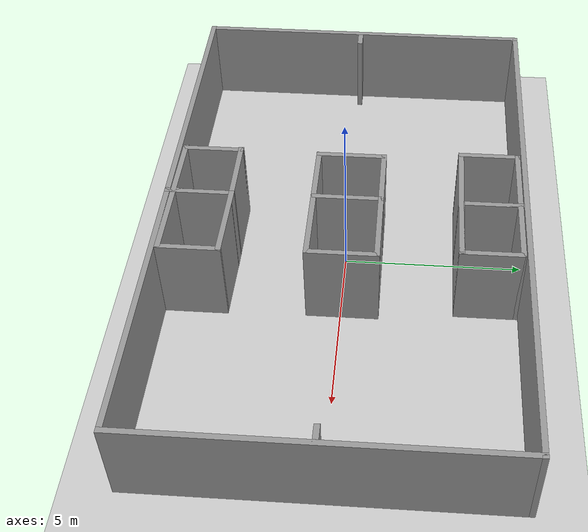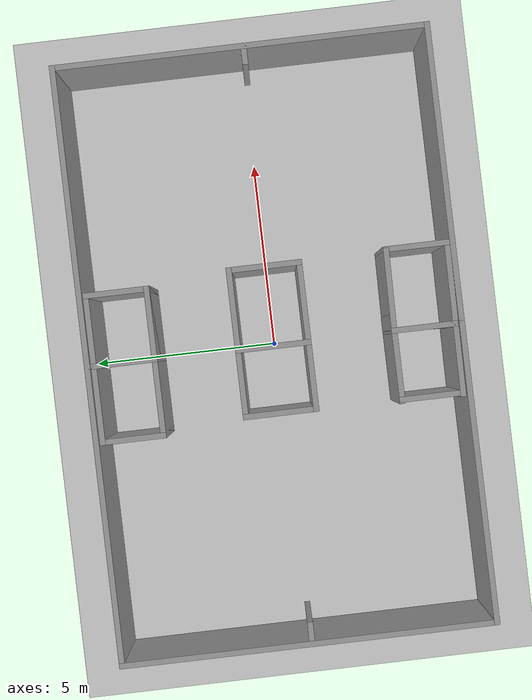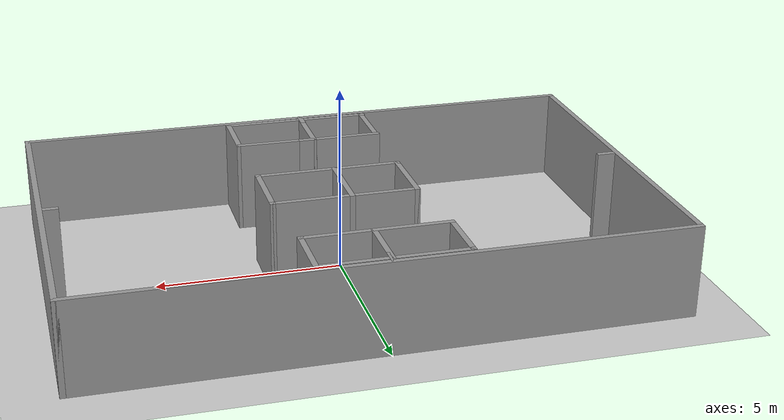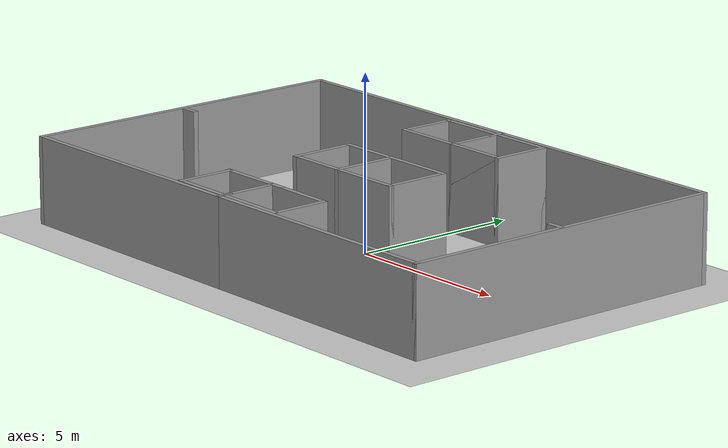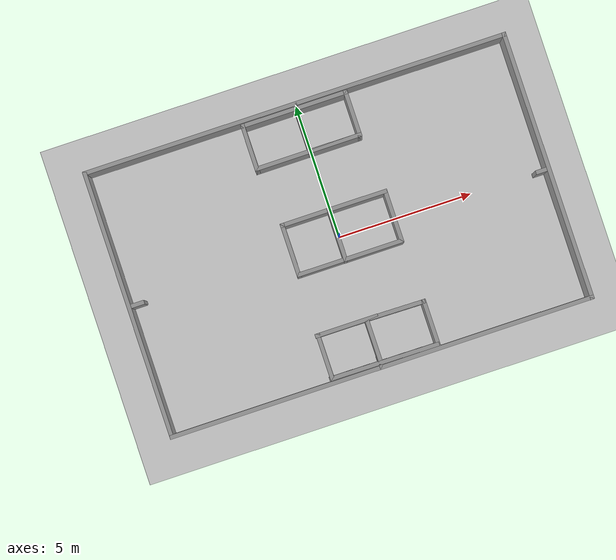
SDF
<sdf version="1.6">
 <world name="default">
  <light name="sun" type="directional">
   <pose>0 0 10 0 -0 0</pose>
   <diffuse>0.8 0.8 0.8 1</diffuse>
   <specular>0.2 0.2 0.2 1</specular>
   <attenuation>
    <range>1000</range>
    <constant>0.9</constant>
    <linear>0.01</linear>
    <quadratic>0.001</quadratic>
   </attenuation>
   <direction>-0.5 0.1 -0.9</direction>
  </light>
  <model name="ground_plane">
   <static>1</static>
   <link name="link">
    <collision name="collision">
     <geometry><plane><normal>0 0 1</normal><size>100 100</size></plane></geometry>
     <surface><friction><ode><mu>100</mu><mu2>50</mu2></ode></friction></surface>
    </collision>
    <visual name="visual">
     <cast_shadows>0</cast_shadows>
     <geometry><plane><normal>0 0 1</normal><size>100 100</size></plane></geometry>
     <material>
      <script><uri>file://media/materials/scripts/gazebo.material</uri><name>Gazebo/Grey</name></script>
     </material>
    </visual>
   </link>
  </model>
  <gravity>0 0 -9.8</gravity>
  <magnetic_field>6e-06 2.3e-05 -4.2e-05</magnetic_field>
  <atmosphere type="adiabatic"/>
  <physics name="default_physics" default="0" type="ode">
   <max_step_size>0.001</max_step_size>
   <real_time_factor>1</real_time_factor>
   <real_time_update_rate>1000</real_time_update_rate>
  </physics>
  <scene><ambient>0.4 0.4 0.4 1</ambient><background>0.7 0.7 0.7 1</background><shadows>1</shadows></scene>
  <spherical_coordinates>
   <surface_model>EARTH_WGS84</surface_model>
   <latitude_deg>0</latitude_deg>
   <longitude_deg>0</longitude_deg>
   <elevation>0</elevation>
   <heading_deg>0</heading_deg>
  </spherical_coordinates>
  <model name="playground_with_corridor">
   <pose>0.027746 -0.001728 0 0 -0 0</pose>
   <link name="Wall_12">
    <collision name="Wall_12_Collision">
     <geometry><box><size>2 0.15 2.5</size></box></geometry>
     <pose>0 0 1.25 0 -0 0</pose>
    </collision>
    <visual name="Wall_12_Visual">
     <pose>0 0 1.25 0 -0 0</pose>
     <geometry><box><size>2 0.15 2.5</size></box></geometry>
     <material>
      <script><uri>file://media/materials/scripts/gazebo.material</uri><name>Gazebo/Grey</name></script>
      <ambient>1 1 1 1</ambient>
     </material>
     <meta><layer>0</layer></meta>
    </visual>
    <pose>-0.095815 0.049104 0 0 -0 1.5708</pose>
   </link>
   <link name="Wall_17">
    <collision name="Wall_17_Collision">
     <geometry><box><size>1.75 0.15 2.5</size></box></geometry>
     <pose>0 0 1.25 0 -0 0</pose>
    </collision>
    <visual name="Wall_17_Visual">
     <pose>0 0 1.25 0 -0 0</pose>
     <geometry><box><size>1.75 0.15 2.5</size></box></geometry>
     <material>
      <script><uri>file://media/materials/scripts/gazebo.material</uri><name>Gazebo/Grey</name></script>
      <ambient>1 1 1 1</ambient>
     </material>
     <meta><layer>0</layer></meta>
    </visual>
    <pose>-0.05869 -3.93371 0 0 0 -1.5708</pose>
   </link>
   <link name="Wall_19">
    <collision name="Wall_19_Collision">
     <geometry><box><size>1.75 0.15 2.5</size></box></geometry>
     <pose>0 0 1.25 0 -0 0</pose>
    </collision>
    <visual name="Wall_19_Visual">
     <pose>0 0 1.25 0 -0 0</pose>
     <geometry><box><size>1.75 0.15 2.5</size></box></geometry>
     <material>
      <script><uri>file://media/materials/scripts/gazebo.material</uri><name>Gazebo/Grey</name></script>
      <ambient>1 1 1 1</ambient>
     </material>
     <meta><layer>0</layer></meta>
    </visual>
    <pose>-0.072353 3.96534 0 0 -0 1.5708</pose>
   </link>
   <link name="Wall_21">
    <collision name="Wall_21_Collision">
     <geometry><box><size>2.25 0.15 2.5</size></box></geometry>
     <pose>0 0 1.25 0 -0 0</pose>
    </collision>
    <visual name="Wall_21_Visual">
     <pose>0 0 1.25 0 -0 0</pose>
     <geometry><box><size>2.25 0.15 2.5</size></box></geometry>
     <material>
      <script><uri>file://media/materials/scripts/gazebo.material</uri><name>Gazebo/Grey</name></script>
      <ambient>1 1 1 1</ambient>
     </material>
     <meta><layer>0</layer></meta>
    </visual>
    <pose>0.954185 0.974104 0 0 -0 0</pose>
   </link>
   <link name="Wall_22">
    <collision name="Wall_22_Collision">
     <geometry><box><size>2 0.15 2.5</size></box></geometry>
     <pose>0 0 1.25 0 -0 0</pose>
    </collision>
    <visual name="Wall_22_Visual">
     <pose>0 0 1.25 0 -0 0</pose>
     <geometry><box><size>2 0.15 2.5</size></box></geometry>
     <material>
      <script><uri>file://media/materials/scripts/gazebo.material</uri><name>Gazebo/Grey</name></script>
      <ambient>1 1 1 1</ambient>
     </material>
     <meta><layer>0</layer></meta>
    </visual>
    <pose>2.00419 0.049104 0 0 0 -1.5708</pose>
   </link>
   <link name="Wall_23">
    <collision name="Wall_23_Collision">
     <geometry><box><size>4 0.15 2.5</size></box></geometry>
     <pose>0 0 1.25 0 -0 0</pose>
    </collision>
    <visual name="Wall_23_Visual">
     <pose>0 0 1.25 0 -0 0</pose>
     <geometry><box><size>4 0.15 2.5</size></box></geometry>
     <material>
      <script><uri>file://media/materials/scripts/gazebo.material</uri><name>Gazebo/Grey</name></script>
      <ambient>1 1 1 1</ambient>
     </material>
     <meta><layer>0</layer></meta>
    </visual>
    <pose>0.079185 -0.875896 0 0 -0 3.14159</pose>
   </link>
   <link name="Wall_24">
    <collision name="Wall_24_Collision">
     <geometry><box><size>2 0.15 2.5</size></box></geometry>
     <pose>0 0 1.25 0 -0 0</pose>
    </collision>
    <visual name="Wall_24_Visual">
     <pose>0 0 1.25 0 -0 0</pose>
     <geometry><box><size>2 0.15 2.5</size></box></geometry>
     <material>
      <script><uri>file://media/materials/scripts/gazebo.material</uri><name>Gazebo/Grey</name></script>
      <ambient>1 1 1 1</ambient>
     </material>
     <meta><layer>0</layer></meta>
    </visual>
    <pose>-1.84581 0.049104 0 0 -0 1.5708</pose>
   </link>
   <link name="Wall_25">
    <collision name="Wall_25_Collision">
     <geometry><box><size>1.9 0.15 2.5</size></box></geometry>
     <pose>0 0 1.25 0 -0 0</pose>
    </collision>
    <visual name="Wall_25_Visual">
     <pose>0 0 1.25 0 -0 0</pose>
     <geometry><box><size>1.9 0.15 2.5</size></box></geometry>
     <material>
      <script><uri>file://media/materials/scripts/gazebo.material</uri><name>Gazebo/Grey</name></script>
      <ambient>1 1 1 1</ambient>
     </material>
     <meta><layer>0</layer></meta>
    </visual>
    <pose>-0.970815 0.974104 0 0 -0 0</pose>
   </link>
   <link name="Wall_27">
    <collision name="Wall_27_Collision">
     <geometry><box><size>2.25023 0.15 2.5</size></box></geometry>
     <pose>0 0 1.25 0 -0 0</pose>
    </collision>
    <visual name="Wall_27_Visual">
     <pose>0 0 1.25 0 -0 0</pose>
     <geometry><box><size>2.25023 0.15 2.5</size></box></geometry>
     <material>
      <script><uri>file://media/materials/scripts/gazebo.material</uri><name>Gazebo/Grey</name></script>
      <ambient>1 1 1 1</ambient>
     </material>
     <meta><layer>0</layer></meta>
    </visual>
    <pose>0.99131 -3.14923 0 0 0 -0.014781</pose>
   </link>
   <link name="Wall_28">
    <collision name="Wall_28_Collision">
     <geometry><box><size>1.75 0.15 2.5</size></box></geometry>
     <pose>0 0 1.25 0 -0 0</pose>
    </collision>
    <visual name="Wall_28_Visual">
     <pose>0 0 1.25 0 -0 0</pose>
     <geometry><box><size>1.75 0.15 2.5</size></box></geometry>
     <material>
      <script><uri>file://media/materials/scripts/gazebo.material</uri><name>Gazebo/Grey</name></script>
      <ambient>1 1 1 1</ambient>
     </material>
     <meta><layer>0</layer></meta>
    </visual>
    <pose>2.07235 -3.96475 0 0 0 -1.5708</pose>
   </link>
   <link name="Wall_29">
    <collision name="Wall_29_Collision">
     <geometry><box><size>4.0949 0.15 2.5</size></box></geometry>
     <pose>0 0 1.25 0 -0 0</pose>
    </collision>
    <visual name="Wall_29_Visual">
     <pose>0 0 1.25 0 -0 0</pose>
     <geometry><box><size>4.0949 0.15 2.5</size></box></geometry>
     <material>
      <script><uri>file://media/materials/scripts/gazebo.material</uri><name>Gazebo/Grey</name></script>
      <ambient>1 1 1 1</ambient>
     </material>
     <meta><layer>0</layer></meta>
    </visual>
    <pose>0.068919 -4.74923 0 0 -0 3.13372</pose>
   </link>
   <link name="Wall_30">
    <collision name="Wall_30_Collision">
     <geometry><box><size>1.75 0.15 2.5</size></box></geometry>
     <pose>0 0 1.25 0 -0 0</pose>
    </collision>
    <visual name="Wall_30_Visual">
     <pose>0 0 1.25 0 -0 0</pose>
     <geometry><box><size>1.75 0.15 2.5</size></box></geometry>
     <material>
      <script><uri>file://media/materials/scripts/gazebo.material</uri><name>Gazebo/Grey</name></script>
      <ambient>1 1 1 1</ambient>
     </material>
     <meta><layer>0</layer></meta>
    </visual>
    <pose>-1.87243 -3.93371 0 0 -0 1.5708</pose>
   </link>
   <link name="Wall_31">
    <collision name="Wall_31_Collision">
     <geometry><box><size>2.34478 0.15 2.5</size></box></geometry>
     <pose>0 0 1.25 0 -0 0</pose>
    </collision>
    <visual name="Wall_31_Visual">
     <pose>0 0 1.25 0 -0 0</pose>
     <geometry><box><size>2.34478 0.15 2.5</size></box></geometry>
     <material>
      <script><uri>file://media/materials/scripts/gazebo.material</uri><name>Gazebo/Grey</name></script>
      <ambient>1 1 1 1</ambient>
     </material>
     <meta><layer>0</layer></meta>
    </visual>
    <pose>-0.806081 -3.13371 0 0 -0 0</pose>
   </link>
   <link name="Wall_33">
    <collision name="Wall_33_Collision">
     <geometry><box><size>2 0.15 2.5</size></box></geometry>
     <pose>0 0 1.25 0 -0 0</pose>
    </collision>
    <visual name="Wall_33_Visual">
     <pose>0 0 1.25 0 -0 0</pose>
     <geometry><box><size>2 0.15 2.5</size></box></geometry>
     <material>
      <script><uri>file://media/materials/scripts/gazebo.material</uri><name>Gazebo/Grey</name></script>
      <ambient>1 1 1 1</ambient>
     </material>
     <meta><layer>0</layer></meta>
    </visual>
    <pose>0.852647 3.16534 0 0 -0 0</pose>
   </link>
   <link name="Wall_34">
    <collision name="Wall_34_Collision">
     <geometry><box><size>1.75 0.15 2.5</size></box></geometry>
     <pose>0 0 1.25 0 -0 0</pose>
    </collision>
    <visual name="Wall_34_Visual">
     <pose>0 0 1.25 0 -0 0</pose>
     <geometry><box><size>1.75 0.15 2.5</size></box></geometry>
     <material>
      <script><uri>file://media/materials/scripts/gazebo.material</uri><name>Gazebo/Grey</name></script>
      <ambient>1 1 1 1</ambient>
     </material>
     <meta><layer>0</layer></meta>
    </visual>
    <pose>1.77765 3.96534 0 0 -0 1.5708</pose>
   </link>
   <link name="Wall_35">
    <collision name="Wall_35_Collision">
     <geometry><box><size>4 0.15 2.5</size></box></geometry>
     <pose>0 0 1.25 0 -0 0</pose>
    </collision>
    <visual name="Wall_35_Visual">
     <pose>0 0 1.25 0 -0 0</pose>
     <geometry><box><size>4 0.15 2.5</size></box></geometry>
     <material>
      <script><uri>file://media/materials/scripts/gazebo.material</uri><name>Gazebo/Grey</name></script>
      <ambient>1 1 1 1</ambient>
     </material>
     <meta><layer>0</layer></meta>
    </visual>
    <pose>-0.147353 4.76534 0 0 -0 3.14159</pose>
   </link>
   <link name="Wall_36">
    <collision name="Wall_36_Collision">
     <geometry><box><size>1.75 0.15 2.5</size></box></geometry>
     <pose>0 0 1.25 0 -0 0</pose>
    </collision>
    <visual name="Wall_36_Visual">
     <pose>0 0 1.25 0 -0 0</pose>
     <geometry><box><size>1.75 0.15 2.5</size></box></geometry>
     <material>
      <script><uri>file://media/materials/scripts/gazebo.material</uri><name>Gazebo/Grey</name></script>
      <ambient>1 1 1 1</ambient>
     </material>
     <meta><layer>0</layer></meta>
    </visual>
    <pose>-2.07235 3.96534 0 0 0 -1.5708</pose>
   </link>
   <link name="Wall_37">
    <collision name="Wall_37_Collision">
     <geometry><box><size>4 0.15 2.5</size></box></geometry>
     <pose>0 0 1.25 0 -0 0</pose>
    </collision>
    <visual name="Wall_37_Visual">
     <pose>0 0 1.25 0 -0 0</pose>
     <geometry><box><size>4 0.15 2.5</size></box></geometry>
     <material>
      <script><uri>file://media/materials/scripts/gazebo.material</uri><name>Gazebo/Grey</name></script>
      <ambient>1 1 1 1</ambient>
     </material>
     <meta><layer>0</layer></meta>
    </visual>
    <pose>-0.147353 3.16534 0 0 -0 0</pose>
   </link>
   <static>1</static>
  </model>
  <model name="playground_16_10">
   <pose>-0.045664 0.011203 0 0 -0 0</pose>
   <link name="Wall_16">
    <collision name="Wall_16_Collision">
     <geometry><box><size>8 0.15 2.5</size></box></geometry>
     <pose>0 0 1.25 0 -0 0</pose>
    </collision>
    <visual name="Wall_16_Visual">
     <pose>0 0 1.25 0 -0 0</pose>
     <geometry><box><size>8 0.15 2.5</size></box></geometry>
     <material>
      <script><uri>file://media/materials/scripts/gazebo.material</uri><name>Gazebo/Grey</name></script>
      <ambient>1 1 1 1</ambient>
     </material>
     <meta><layer>0</layer></meta>
    </visual>
    <pose>-3.925 -4.925 0 0 -0 3.14159</pose>
   </link>
   <link name="Wall_17">
    <collision name="Wall_17_Collision">
     <geometry><box><size>10 0.15 2.5</size></box></geometry>
     <pose>0 0 1.25 0 -0 0</pose>
    </collision>
    <visual name="Wall_17_Visual">
     <pose>0 0 1.25 0 -0 0</pose>
     <geometry><box><size>10 0.15 2.5</size></box></geometry>
     <material>
      <script><uri>file://media/materials/scripts/gazebo.material</uri><name>Gazebo/Grey</name></script>
      <ambient>1 1 1 1</ambient>
     </material>
     <meta><layer>0</layer></meta>
    </visual>
    <pose>-7.85 0 0 0 -0 1.5708</pose>
   </link>
   <link name="Wall_18">
    <collision name="Wall_18_Collision">
     <geometry><box><size>15.85 0.15 2.5</size></box></geometry>
     <pose>0 0 1.25 0 -0 0</pose>
    </collision>
    <visual name="Wall_18_Visual">
     <pose>0 0 1.25 0 -0 0</pose>
     <geometry><box><size>15.85 0.15 2.5</size></box></geometry>
     <material>
      <script><uri>file://media/materials/scripts/gazebo.material</uri><name>Gazebo/Grey</name></script>
      <ambient>1 1 1 1</ambient>
     </material>
     <meta><layer>0</layer></meta>
    </visual>
    <pose>0 4.925 0 0 -0 0</pose>
   </link>
   <link name="Wall_23">
    <collision name="Wall_23_Collision">
     <geometry><box><size>0.5 0.15 2.5</size></box></geometry>
     <pose>0 0 1.25 0 -0 0</pose>
    </collision>
    <visual name="Wall_23_Visual">
     <pose>0 0 1.25 0 -0 0</pose>
     <geometry><box><size>0.5 0.15 2.5</size></box></geometry>
     <material>
      <script><uri>file://media/materials/scripts/gazebo.material</uri><name>Gazebo/Grey</name></script>
      <ambient>1 1 1 1</ambient>
     </material>
     <meta><layer>0</layer></meta>
    </visual>
    <pose>0 -4.75 0 0 -0 1.5708</pose>
   </link>
   <link name="Wall_25">
    <collision name="Wall_25_Collision">
     <geometry><box><size>0.5 0.15 2.5</size></box></geometry>
     <pose>0 0 1.25 0 -0 0</pose>
    </collision>
    <visual name="Wall_25_Visual">
     <pose>0 0 1.25 0 -0 0</pose>
     <geometry><box><size>0.5 0.15 2.5</size></box></geometry>
     <material>
      <script><uri>file://media/materials/scripts/gazebo.material</uri><name>Gazebo/Grey</name></script>
      <ambient>1 1 1 1</ambient>
     </material>
     <meta><layer>0</layer></meta>
    </visual>
    <pose>0 4.7 0 0 -0 1.5708</pose>
   </link>
   <link name="Wall_28">
    <collision name="Wall_28_Collision">
     <geometry><box><size>0.5 0.15 2.5</size></box></geometry>
     <pose>0 0 1.25 0 -0 0</pose>
    </collision>
    <visual name="Wall_28_Visual">
     <pose>0 0 1.25 0 -0 0</pose>
     <geometry><box><size>0.5 0.15 2.5</size></box></geometry>
     <material>
      <script><uri>file://media/materials/scripts/gazebo.material</uri><name>Gazebo/Grey</name></script>
      <ambient>1 1 1 1</ambient>
     </material>
     <meta><layer>0</layer></meta>
    </visual>
    <pose>7.61369 -0.100793 0 0 -0 0</pose>
   </link>
   <link name="Wall_31">
    <collision name="Wall_31_Collision">
     <geometry><box><size>0.5 0.15 2.5</size></box></geometry>
     <pose>0 0 1.25 0 -0 0</pose>
    </collision>
    <visual name="Wall_31_Visual">
     <pose>0 0 1.25 0 -0 0</pose>
     <geometry><box><size>0.5 0.15 2.5</size></box></geometry>
     <material>
      <script><uri>file://media/materials/scripts/gazebo.material</uri><name>Gazebo/Grey</name></script>
      <ambient>1 1 1 1</ambient>
     </material>
     <meta><layer>0</layer></meta>
    </visual>
    <pose>-7.525 -0.075 0 0 -0 3.14159</pose>
   </link>
   <link name="Wall_5">
    <collision name="Wall_5_Collision">
     <geometry><box><size>8 0.15 2.5</size></box></geometry>
     <pose>0 0 1.25 0 -0 0</pose>
    </collision>
    <visual name="Wall_5_Visual">
     <pose>0 0 1.25 0 -0 0</pose>
     <geometry><box><size>8 0.15 2.5</size></box></geometry>
     <material>
      <script><uri>file://media/materials/scripts/gazebo.material</uri><name>Gazebo/Grey</name></script>
      <ambient>1 1 1 1</ambient>
     </material>
     <meta><layer>0</layer></meta>
    </visual>
    <pose>3.925 -4.925 0 0 -0 0</pose>
   </link>
   <link name="Wall_8">
    <collision name="Wall_8_Collision">
     <geometry><box><size>10 0.15 2.5</size></box></geometry>
     <pose>0 0 1.25 0 -0 0</pose>
    </collision>
    <visual name="Wall_8_Visual">
     <pose>0 0 1.25 0 -0 0</pose>
     <geometry><box><size>10 0.15 2.5</size></box></geometry>
     <material>
      <script><uri>file://media/materials/scripts/gazebo.material</uri><name>Gazebo/Grey</name></script>
      <ambient>1 1 1 1</ambient>
     </material>
     <meta><layer>0</layer></meta>
    </visual>
    <pose>7.85 0 0 0 -0 1.5708</pose>
   </link>
   <static>1</static>
  </model>
 </world>
</sdf>
